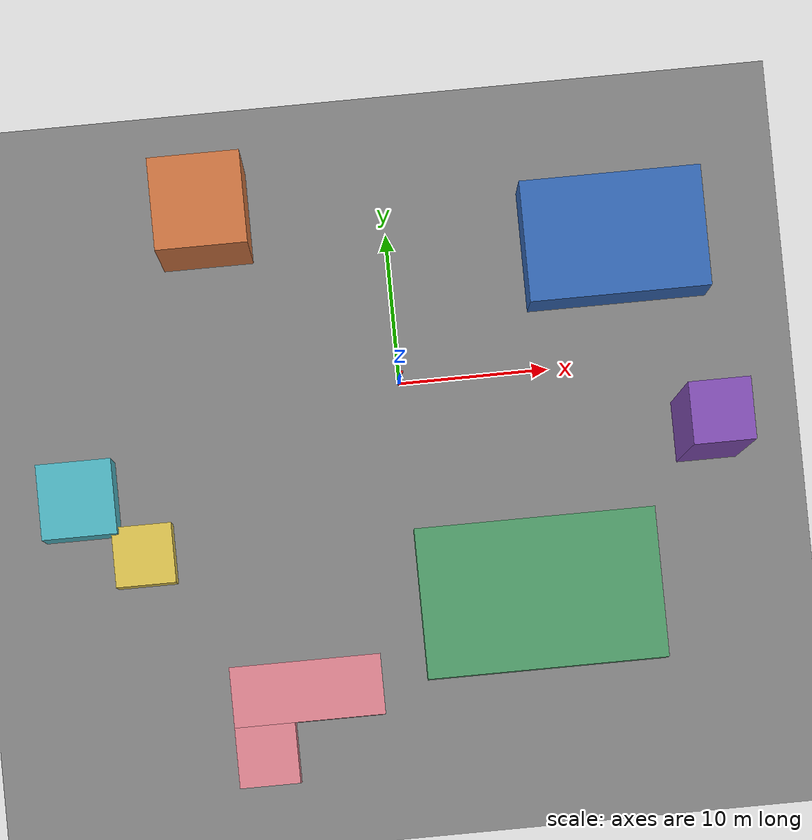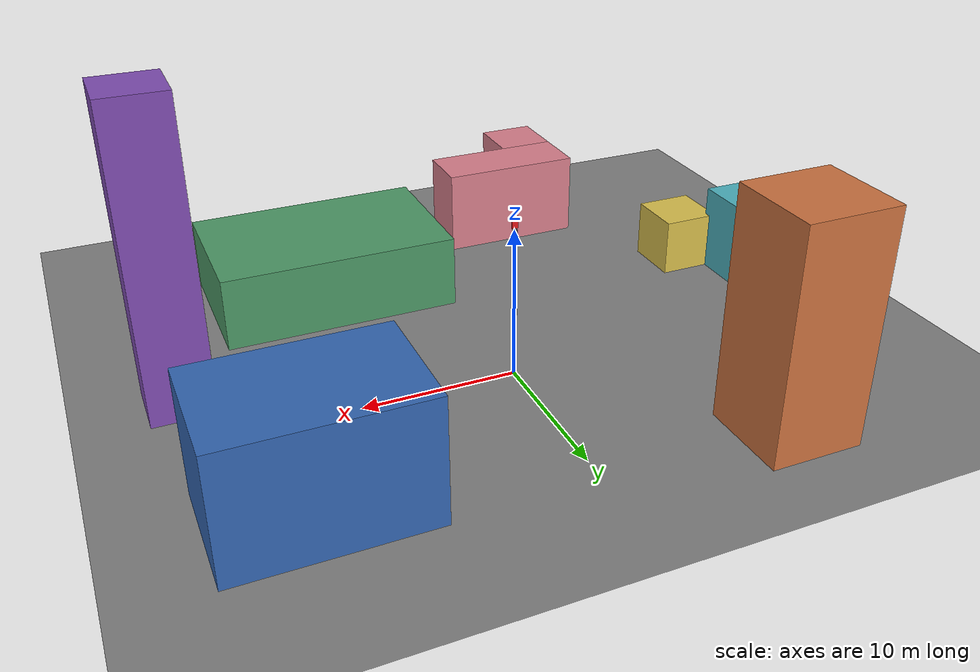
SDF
<?xml version="1.0" ?>
<sdf version="1.8">
  <world name="heatmap_world">

    <physics name="1ms" type="ignored">
      <max_step_size>0.001</max_step_size>
      <real_time_factor>1.0</real_time_factor>
    </physics>

    <!-- Required system plugins -->
    <plugin filename="ignition-gazebo-physics-system"
            name="ignition::gazebo::systems::Physics"/>
    <plugin filename="ignition-gazebo-scene-broadcaster-system"
            name="ignition::gazebo::systems::SceneBroadcaster"/>
    <plugin filename="ignition-gazebo-user-commands-system"
            name="ignition::gazebo::systems::UserCommands"/>

    <plugin filename="libHeatmapPlugin.so"
            name="heatmap_plugin::HeatmapPlugin">
      <grid_w>128</grid_w>
      <grid_h>128</grid_h>
      <cell_size>0.5</cell_size>
      <frequency_hz>3500000000</frequency_hz>
      <tx_dbm>30.0</tx_dbm>
      <tx_height>10.0</tx_height>
      <rx_height>1.5</rx_height>
      <tx_gain_dbi>8.0</tx_gain_dbi>
      <rx_gain_dbi>0.0</rx_gain_dbi>
      <gnb_pose>0 0 10 0 0 0</gnb_pose>
      <propagation_model>3gpp_umi</propagation_model>
      <wall_loss_db>15.0</wall_loss_db>
      <reflection_coeff>0.7</reflection_coeff>
      <include_shadowing>false</include_shadowing>
      <shadowing_std_los>4.0</shadowing_std_los>
      <shadowing_std_nlos>7.82</shadowing_std_nlos>
      <max_reflections>2</max_reflections>
      <max_diffractions>1</max_diffractions>
    </plugin>

    <!-- GUI Configuration -->
    <gui fullscreen="0">
      <plugin filename="GzScene3D" name="3D View">
        <ignition-gui>
          <title>3D View</title>
          <property type="bool" key="showTitleBar">true</property>
          <property type="string" key="state">docked</property>
        </ignition-gui>
        <engine>ogre2</engine>
        <scene>scene</scene>
        <ambient_light>0.4 0.4 0.4</ambient_light>
        <background_color>0.8 0.8 0.8</background_color>
        <camera_pose>40 -40 35 0 0.6 2.35</camera_pose>
      </plugin>

      <plugin filename="WorldControl" name="World control">
        <ignition-gui>
          <title>World control</title>
          <property type="bool" key="showTitleBar">false</property>
          <property type="bool" key="resizable">false</property>
          <property type="double" key="height">72</property>
          <property type="double" key="width">121</property>
          <property type="double" key="z">1</property>
          <property type="string" key="state">floating</property>
          <anchors target="3D View">
            <line own="left" target="left"/>
            <line own="bottom" target="bottom"/>
          </anchors>
        </ignition-gui>
        <play_pause>true</play_pause>
        <step>true</step>
        <start_paused>false</start_paused>
      </plugin>

      <plugin filename="WorldStats" name="World stats">
        <ignition-gui>
          <title>World stats</title>
          <property type="bool" key="showTitleBar">false</property>
          <property type="bool" key="resizable">false</property>
          <property type="double" key="height">110</property>
          <property type="double" key="width">290</property>
          <property type="double" key="z">1</property>
          <property type="string" key="state">floating</property>
          <anchors target="3D View">
            <line own="right" target="right"/>
            <line own="bottom" target="bottom"/>
          </anchors>
        </ignition-gui>
        <sim_time>true</sim_time>
        <real_time>true</real_time>
        <real_time_factor>true</real_time_factor>
        <iterations>true</iterations>
      </plugin>

      <plugin filename="ImageDisplay" name="RF Heatmap">
        <ignition-gui>
          <title>RF Signal Heatmap</title>
          <property type="bool" key="showTitleBar">true</property>
          <property type="string" key="state">docked</property>
        </ignition-gui>
        <topic>/gnb/heatmap</topic>
      </plugin>

      <plugin filename="EntityTree" name="Entity tree">
        <ignition-gui>
          <title>Entity tree</title>
          <property type="bool" key="showTitleBar">true</property>
          <property type="string" key="state">docked</property>
        </ignition-gui>
      </plugin>
    </gui>

    <!-- Lighting -->
    <light type="directional" name="sun">
      <cast_shadows>true</cast_shadows>
      <pose>0 0 10 0 0 0</pose>
      <diffuse>0.8 0.8 0.8 1</diffuse>
      <specular>0.2 0.2 0.2 1</specular>
      <direction>-0.5 0.1 -0.9</direction>
    </light>

    <!-- Ground Plane - Grey -->
    <model name="ground_plane">
      <static>true</static>
      <link name="link">
        <collision name="collision">
          <geometry>
            <plane><normal>0 0 1</normal><size>200 200</size></plane>
          </geometry>
        </collision>
        <visual name="visual">
          <geometry>
            <plane><normal>0 0 1</normal><size>200 200</size></plane>
          </geometry>
          <material>
            <ambient>0.5 0.5 0.5 1</ambient>
            <diffuse>0.5 0.5 0.5 1</diffuse>
            <specular>0.1 0.1 0.1 1</specular>
            <emissive>0 0 0 1</emissive>
          </material>
        </visual>
      </link>
    </model>

    <!-- gNB Tower -->
    <model name="gnb_tower">
      <static>true</static>
      <pose>0 0 5 0 0 0</pose>
      <link name="tower_link">
        <visual name="pole">
          <geometry><cylinder><radius>0.15</radius><length>10</length></cylinder></geometry>
          <material>
            <ambient>0.3 0.3 0.3 1</ambient>
            <diffuse>0.3 0.3 0.3 1</diffuse>
            <specular>0.1 0.1 0.1 1</specular>
            <emissive>0 0 0 1</emissive>
          </material>
        </visual>
        <visual name="antenna">
          <pose>0 0 5.5 0 0 0</pose>
          <geometry><box><size>0.4 0.15 0.8</size></box></geometry>
          <material>
            <ambient>0.9 0.1 0.1 1</ambient>
            <diffuse>0.9 0.1 0.1 1</diffuse>
            <specular>0.2 0.2 0.2 1</specular>
            <emissive>0 0 0 1</emissive>
          </material>
        </visual>
      </link>
    </model>

    <!-- Large office building - Blue -->
    <model name="building_office">
      <static>false</static>
      <pose>15 8 4 0 0 0</pose>
      <link name="link">
        <collision name="collision">
          <geometry><box><size>12 8 8</size></box></geometry>
        </collision>
        <visual name="visual">
          <geometry><box><size>12 8 8</size></box></geometry>
          <material>
            <ambient>0.2 0.4 0.7 1</ambient>
            <diffuse>0.2 0.4 0.7 1</diffuse>
            <specular>0.1 0.1 0.1 1</specular>
            <emissive>0 0 0 1</emissive>
          </material>
        </visual>
      </link>
    </model>

    <!-- Residential tower - Terracotta/Orange -->
    <model name="building_residential">
      <static>false</static>
      <pose>-12 12 7.5 0 0 0</pose>
      <link name="link">
        <collision name="collision">
          <geometry><box><size>6 6 15</size></box></geometry>
        </collision>
        <visual name="visual">
          <geometry><box><size>6 6 15</size></box></geometry>
          <material>
            <ambient>0.8 0.45 0.25 1</ambient>
            <diffuse>0.8 0.45 0.25 1</diffuse>
            <specular>0.1 0.1 0.1 1</specular>
            <emissive>0 0 0 1</emissive>
          </material>
        </visual>
      </link>
    </model>

    <!-- Shopping center - Green -->
    <model name="building_shopping">
      <static>false</static>
      <pose>8 -15 2.5 0 0 0</pose>
      <link name="link">
        <collision name="collision">
          <geometry><box><size>16 10 5</size></box></geometry>
        </collision>
        <visual name="visual">
          <geometry><box><size>16 10 5</size></box></geometry>
          <material>
            <ambient>0.3 0.6 0.4 1</ambient>
            <diffuse>0.3 0.6 0.4 1</diffuse>
            <specular>0.1 0.1 0.1 1</specular>
            <emissive>0 0 0 1</emissive>
          </material>
        </visual>
      </link>
    </model>

    <!-- Small building cluster - Yellow -->
    <model name="building_small1">
      <static>false</static>
      <pose>-18 -10 2 0 0 0</pose>
      <link name="link">
        <collision name="collision">
          <geometry><box><size>4 4 4</size></box></geometry>
        </collision>
        <visual name="visual">
          <geometry><box><size>4 4 4</size></box></geometry>
          <material>
            <ambient>0.85 0.75 0.3 1</ambient>
            <diffuse>0.85 0.75 0.3 1</diffuse>
            <specular>0.1 0.1 0.1 1</specular>
            <emissive>0 0 0 1</emissive>
          </material>
        </visual>
      </link>
    </model>

    <!-- Small building 2 - Cyan -->
    <model name="building_small2">
      <static>false</static>
      <pose>-22 -6 3 0 0 0</pose>
      <link name="link">
        <collision name="collision">
          <geometry><box><size>5 5 6</size></box></geometry>
        </collision>
        <visual name="visual">
          <geometry><box><size>5 5 6</size></box></geometry>
          <material>
            <ambient>0.3 0.7 0.75 1</ambient>
            <diffuse>0.3 0.7 0.75 1</diffuse>
            <specular>0.1 0.1 0.1 1</specular>
            <emissive>0 0 0 1</emissive>
          </material>
        </visual>
      </link>
    </model>

    <!-- Tall narrow building - Purple -->
    <model name="building_tower">
      <static>false</static>
      <pose>20 -5 10 0 0 0</pose>
      <link name="link">
        <collision name="collision">
          <geometry><box><size>4 4 20</size></box></geometry>
        </collision>
        <visual name="visual">
          <geometry><box><size>4 4 20</size></box></geometry>
          <material>
            <ambient>0.5 0.3 0.7 1</ambient>
            <diffuse>0.5 0.3 0.7 1</diffuse>
            <specular>0.1 0.1 0.1 1</specular>
            <emissive>0 0 0 1</emissive>
          </material>
        </visual>
      </link>
    </model>

    <!-- L-shaped building - Pink/Salmon -->
    <model name="building_lshaped">
      <static>false</static>
      <pose>-8 -20 0 0 0 0</pose>
      <link name="main_wing">
        <pose>0 0 3 0 0 0</pose>
        <collision name="collision">
          <geometry><box><size>10 4 6</size></box></geometry>
        </collision>
        <visual name="visual">
          <geometry><box><size>10 4 6</size></box></geometry>
          <material>
            <ambient>0.85 0.5 0.55 1</ambient>
            <diffuse>0.85 0.5 0.55 1</diffuse>
            <specular>0.1 0.1 0.1 1</specular>
            <emissive>0 0 0 1</emissive>
          </material>
        </visual>
      </link>
      <link name="side_wing">
        <pose>-3 -4 3 0 0 0</pose>
        <collision name="collision">
          <geometry><box><size>4 4 6</size></box></geometry>
        </collision>
        <visual name="visual">
          <geometry><box><size>4 4 6</size></box></geometry>
          <material>
            <ambient>0.85 0.5 0.55 1</ambient>
            <diffuse>0.85 0.5 0.55 1</diffuse>
            <specular>0.1 0.1 0.1 1</specular>
            <emissive>0 0 0 1</emissive>
          </material>
        </visual>
      </link>
    </model>

  </world>
</sdf>
